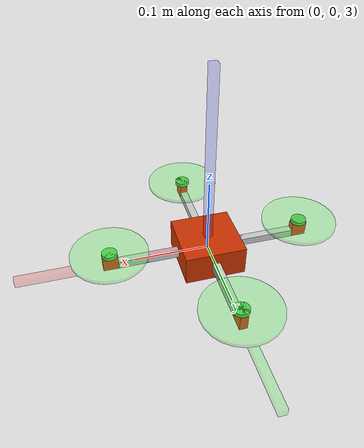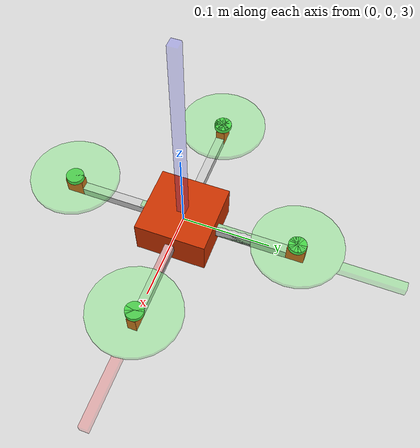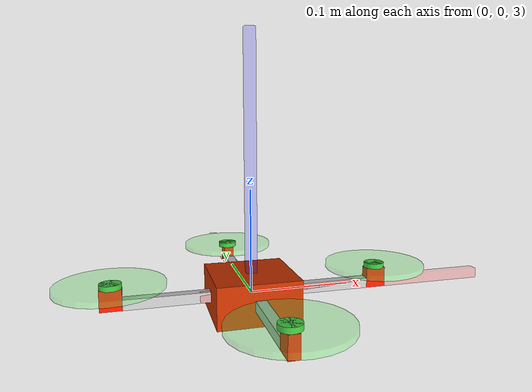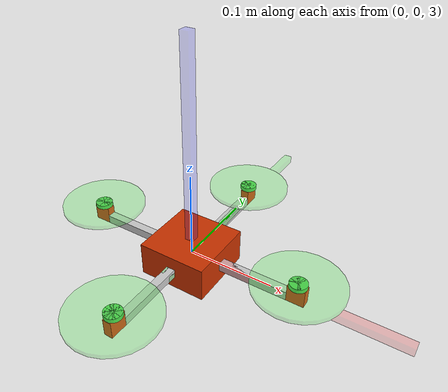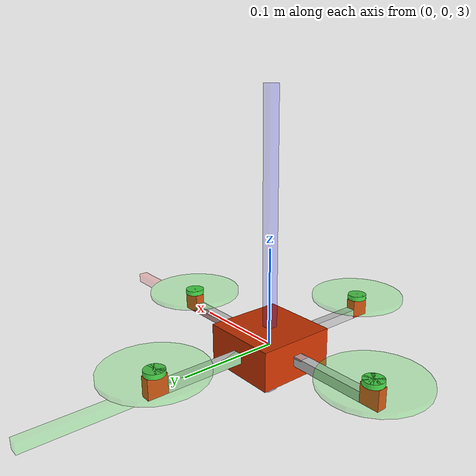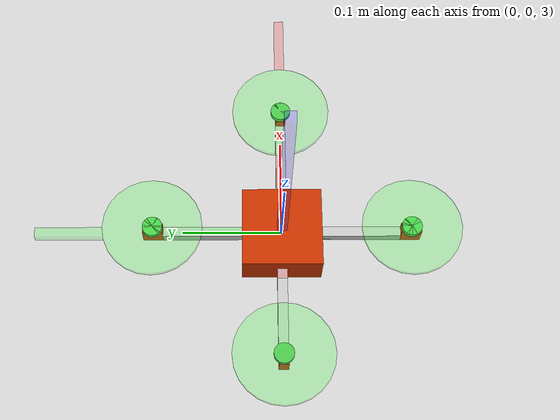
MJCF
<!--
Quadrotor with `+` configuration.
Front: Along body X-axis
-->

<mujoco model="quadrotorplus">

    <!-- simulation parameters -->
    <compiler angle="degree" inertiafromgeom="true" coordinate="local"/>
    <option	timestep="0.01" gravity="0 0 -9.81" density="1" viscosity="1e-5" integrator="RK4"/>

    <!-- for rendering at 720p -->
    <visual>
        <global offheight="720" offwidth="1280"/>
    </visual>

    <default>
        <joint armature="1" damping="1" limited="true"/>
        <geom conaffinity="0" condim="3" density="5.0" friction="1 0.5 0.5" margin="0.01" rgba="0.8 0.6 0.4 1"/>
    </default>

    <!-- textures - ignore this -->
    <asset>
        <texture builtin="gradient" type="skybox" height="100" width="100" rgb1="1 1 1" rgb2="0 0 0"/>
        <texture name="texgeom" builtin="flat" height="1278" mark="cross" markrgb="1 1 1" random="0.01" rgb1="0.8 0.6 0.4" rgb2="0.8 0.6 0.4" type="cube" width="127"/>
        <texture name="texplane" builtin="checker" height="100" width="100" rgb1="0 0 0" rgb2="0.8 0.8 0.8" type="2d"/>
        <material name="MatPlane" reflectance="0.5" shininess="1" specular="1" texrepeat="60 60" texture="texplane"/>
        <material name="geom" texture="texgeom" texuniform="true"/>
    </asset>

    <worldbody>
        <light cutoff="100" diffuse="1 1 1" dir="-0 0 -1.3" directional="true" exponent="1" pos="0 0 1.3" specular=".1 .1 .1"/>
        <geom conaffinity="1" condim="3" material="MatPlane" name="floor" pos="0 0 0" rgba="0.4 0.3 0.3 1" size="5 5 0.2" type="plane"/>
        <body name="core" pos="0 0 3" >
            <geom name="core_geom" type="box" pos="0 0 0" quat="1 0 0 0" size=".04 .04 .02" rgba=".8 .2 0 1" mass=".1"/>
            <!--This root is the 6 DOF joint which allows the quad to move in free space relative to the plane-->
            <joint name="root" type="free" damping="0" armature="0" pos="0 0 0" limited="false"/>
            <geom name="arm_front0" type="box" pos=".08 0 0" size=".04 .005 .005" quat="1 0 0 0" rgba=".8 .8 .8 1" mass=".02"/>
            <geom name="arm_back0" type="box" pos="-.08 0 0" size=".04 .005 .005" quat="0 0 0 1" rgba=".8 .8 .8 1" mass=".02"/>
            <geom name="arm_left0" type="box" pos="0 .08 0" size=".04 .005 .005" quat=".707 0 0 .707" rgba=".8 .8 .8 1" mass=".02"/>
            <geom name="arm_right0" type="box" pos="0 -.08 0" size=".04 .005 .005" quat=".707 0 0 -.707" rgba=".8 .8 .8 1" mass=".02"/>

            <!--Define the 4 thrusters-->
            <body name="arm_front1" pos=".12 0 0">
                <geom type="box" pos=".01 0 .005" size=".01 .005 .01" quat="1 0 0 0" rgba="1 .1 0 1" mass=".02"/>
                <body name="thruster0" pos="0.01 0 0.015">
                    <geom type="cylinder" pos="0 0 .0025" size=".05 .0025" quat="1 0 0 0" rgba=".3 1 .3 0.3" mass=".005"/>
                    <!--A "site" is a point at which a force is applied, simulating thrust-->
                    <site name="motor0" type="cylinder" pos="0 0 .0025" size=".01 .0025" quat="1 0 0 0" rgba=".3 .8 .3 1"/>
                </body>
            </body>

            <body name="arm_back1" pos="-.12 0 0">
                <geom type="box" pos="-.01 0 .005" size=".01 .005 .01" quat="0 0 0 1" rgba="1 .1 0 1" mass=".02"/>
                <body name="thruster1" pos="-0.01 0 .015">
                    <geom type="cylinder" pos="0 0 .0025" size=".05 .0025" quat="1 0 0 0" rgba=".3 1 .3 0.3" mass=".005"/>
                    <site name="motor1" type="cylinder" pos="0 0 .0025" size=".01 .0025" quat="1 0 0 0" rgba=".3 .8 .3 1"/>
                </body>
            </body>

            <body name="arm_left1" pos="0 .12 0">
                <geom type="box" pos="0 .01 .005" size=".01 .005 .01" quat=".7071068 0 0 .7071068" rgba="1 .1 0 1" mass=".02"/>
                <body name="thruster2" pos="0 0.01 0.015">
                    <geom type="cylinder" pos="0 0 .0025" size=".05 .0025" quat="1 0 0 0" rgba=".3 1 .3 0.3" mass=".005"/>
                    <site name="motor2" type="cylinder" pos="0 0 .0025" size=".01 0.0025" quat="1 0 0 0" rgba=".3 .8 .3 1"/>
                </body>
            </body>

            <body name="arm_right1" pos="0 -.12 0">
                <geom type="box" pos="0 -.01 .005" size=".01 .005 .01" quat=".7071068 0 0 -.7071068" rgba="1 .1 0 1" mass=".02"/>
                <body name="thruster3" pos="0 -0.01 .015">
                    <geom type="cylinder" pos="0 0 .0025" size=".05 .0025" quat="1 0 0 0" rgba=".3 1 .3 0.3" mass=".005"/>
                    <site type="cylinder" pos="0 0 .0025" size=".01 .0025" quat="1 0 0 0" rgba=".3 .8 .3 1" name="motor3"/>
                </body>
            </body>

            <!--These sites are how the moments are applied from the torques of the motors-->
            <site name="x_axis" type="box" pos=".1 .0 .0" size=".15 .005 .005" quat="1 0 0 0" rgba="1 0 0 0.2"/>
            <site name="y_axis" type="box" pos=".0 .1 .0" size=".15 .005 .005" quat=".707 0 0 .707" rgba="0 1 0 0.2"/>
            <site name="z_axis" type="box" pos=".0 .0 .1" size=".15 .005 .005" quat="-.707 0 .707 0" rgba="0 0 1 0.2"/>
        </body>
    </worldbody>

    <!--The motors themselves and their constraints, they are applied to the sites as shown-->
    <actuator>
        <motor ctrllimited="true" ctrlrange="0 1" gear="0  0. 1. 0. 0. -0.1" site="motor0"/>
        <motor ctrllimited="true" ctrlrange="0 1" gear="0  0. 1. 0. 0.  0.1" site="motor1"/>
        <motor ctrllimited="true" ctrlrange="0 1" gear="0  0. 1. 0. 0. -0.1" site="motor2"/>
        <motor ctrllimited="true" ctrlrange="0 1" gear="0  0. 1. 0. 0.  0.1" site="motor3"/>
    </actuator>
</mujoco>
